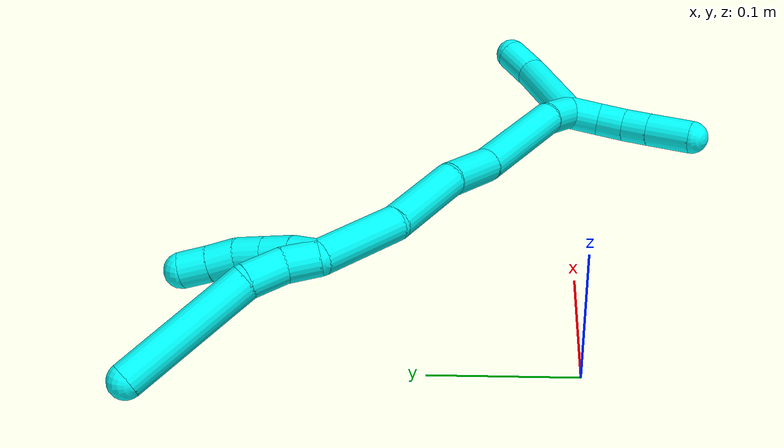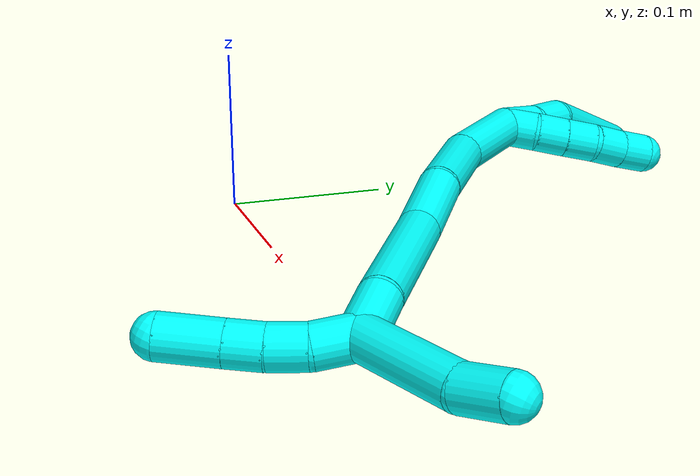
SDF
<sdf version="1.7">
 <world name="default">
  <model name="3">
   <static>0</static>
   <link name="3">
    <collision name="collision-cylinder-e_1_2_8">
     <pose>-0.006054 0.008515 -0.005609 -2.15326 -0.535807 0.94246</pose>
     <geometry><cylinder><radius>0.0125</radius><length>0.023717</length></cylinder></geometry>
     <surface>
      <friction><ode><mu>1.16</mu><mu2>1.16</mu2><slip1>0</slip1><slip2>0</slip2></ode></friction>
      <contact><ode><kp>1e+06</kp><kd>1</kd><max_vel>0</max_vel><min_depth>0.001</min_depth></ode></contact>
     </surface>
    </collision>
    <visual name="visual-cylinder-e_1_2_8">
     <pose>-0.006054 0.008515 -0.005609 -2.15326 -0.535807 0.94246</pose>
     <geometry><cylinder><radius>0.0125</radius><length>0.023717</length></cylinder></geometry>
     <material><ambient>0.003922 1 0.996078 1</ambient></material>
    </visual>
    <collision name="collision-cylinder-e_2_8_9">
     <pose>-0.021056 0.027623 -0.013735 -1.80409 -0.68794 0.851196</pose>
     <geometry><cylinder><radius>0.0125</radius><length>0.028185</length></cylinder></geometry>
     <surface>
      <friction><ode><mu>1.16</mu><mu2>1.16</mu2><slip1>0</slip1><slip2>0</slip2></ode></friction>
      <contact><ode><kp>1e+06</kp><kd>1</kd><max_vel>0</max_vel><min_depth>0.001</min_depth></ode></contact>
     </surface>
    </collision>
    <visual name="visual-cylinder-e_2_8_9">
     <pose>-0.021056 0.027623 -0.013735 -1.80409 -0.68794 0.851196</pose>
     <geometry><cylinder><radius>0.0125</radius><length>0.028185</length></cylinder></geometry>
     <material><ambient>0.003922 1 0.996078 1</ambient></material>
    </visual>
    <collision name="collision-cylinder-e_3_9_6">
     <pose>-0.071401 0.062933 -0.025261 -1.92029 -1.00466 1.33092</pose>
     <geometry><cylinder><radius>0.0125</radius><length>0.098098</length></cylinder></geometry>
     <surface>
      <friction><ode><mu>1.16</mu><mu2>1.16</mu2><slip1>0</slip1><slip2>0</slip2></ode></friction>
      <contact><ode><kp>1e+06</kp><kd>1</kd><max_vel>0</max_vel><min_depth>0.001</min_depth></ode></contact>
     </surface>
    </collision>
    <visual name="visual-cylinder-e_3_9_6">
     <pose>-0.071401 0.062933 -0.025261 -1.92029 -1.00466 1.33092</pose>
     <geometry><cylinder><radius>0.0125</radius><length>0.098098</length></cylinder></geometry>
     <material><ambient>0.003922 1 0.996078 1</ambient></material>
    </visual>
    <collision name="collision-cylinder-e_1_2_10">
     <pose>-0.001548 0.003504 -0.009237 -2.779 -0.155393 0.803243</pose>
     <geometry><cylinder><radius>0.0125</radius><length>0.02</length></cylinder></geometry>
     <surface>
      <friction><ode><mu>1.16</mu><mu2>1.16</mu2><slip1>0</slip1><slip2>0</slip2></ode></friction>
      <contact><ode><kp>1e+06</kp><kd>1</kd><max_vel>0</max_vel><min_depth>0.001</min_depth></ode></contact>
     </surface>
    </collision>
    <visual name="visual-cylinder-e_1_2_10">
     <pose>-0.001548 0.003504 -0.009237 -2.779 -0.155393 0.803243</pose>
     <geometry><cylinder><radius>0.0125</radius><length>0.02</length></cylinder></geometry>
     <material><ambient>0.003922 1 0.996078 1</ambient></material>
    </visual>
    <collision name="collision-cylinder-e_2_10_11">
     <pose>-0.006389 0.011238 -0.026916 -2.67711 -0.335669 1.24326</pose>
     <geometry><cylinder><radius>0.0125</radius><length>0.02</length></cylinder></geometry>
     <surface>
      <friction><ode><mu>1.16</mu><mu2>1.16</mu2><slip1>0</slip1><slip2>0</slip2></ode></friction>
      <contact><ode><kp>1e+06</kp><kd>1</kd><max_vel>0</max_vel><min_depth>0.001</min_depth></ode></contact>
     </surface>
    </collision>
    <visual name="visual-cylinder-e_2_10_11">
     <pose>-0.006389 0.011238 -0.026916 -2.67711 -0.335669 1.24326</pose>
     <geometry><cylinder><radius>0.0125</radius><length>0.02</length></cylinder></geometry>
     <material><ambient>0.003922 1 0.996078 1</ambient></material>
    </visual>
    <collision name="collision-cylinder-e_3_11_12">
     <pose>-0.013007 0.019838 -0.043715 -2.65977 -0.338838 1.21643</pose>
     <geometry><cylinder><radius>0.0125</radius><length>0.02</length></cylinder></geometry>
     <surface>
      <friction><ode><mu>1.16</mu><mu2>1.16</mu2><slip1>0</slip1><slip2>0</slip2></ode></friction>
      <contact><ode><kp>1e+06</kp><kd>1</kd><max_vel>0</max_vel><min_depth>0.001</min_depth></ode></contact>
     </surface>
    </collision>
    <visual name="visual-cylinder-e_3_11_12">
     <pose>-0.013007 0.019838 -0.043715 -2.65977 -0.338838 1.21643</pose>
     <geometry><cylinder><radius>0.0125</radius><length>0.02</length></cylinder></geometry>
     <material><ambient>0.003922 1 0.996078 1</ambient></material>
    </visual>
    <collision name="collision-cylinder-e_4_12_13">
     <pose>-0.021846 0.029123 -0.058814 -2.51167 -0.584111 1.49053</pose>
     <geometry><cylinder><radius>0.0125</radius><length>0.02</length></cylinder></geometry>
     <surface>
      <friction><ode><mu>1.16</mu><mu2>1.16</mu2><slip1>0</slip1><slip2>0</slip2></ode></friction>
      <contact><ode><kp>1e+06</kp><kd>1</kd><max_vel>0</max_vel><min_depth>0.001</min_depth></ode></contact>
     </surface>
    </collision>
    <visual name="visual-cylinder-e_4_12_13">
     <pose>-0.021846 0.029123 -0.058814 -2.51167 -0.584111 1.49053</pose>
     <geometry><cylinder><radius>0.0125</radius><length>0.02</length></cylinder></geometry>
     <material><ambient>0.003922 1 0.996078 1</ambient></material>
    </visual>
    <collision name="collision-cylinder-e_5_13_5">
     <pose>-0.032538 0.039227 -0.072356 -2.48976 -0.544257 1.3804</pose>
     <geometry><cylinder><radius>0.0125</radius><length>0.02</length></cylinder></geometry>
     <surface>
      <friction><ode><mu>1.16</mu><mu2>1.16</mu2><slip1>0</slip1><slip2>0</slip2></ode></friction>
      <contact><ode><kp>1e+06</kp><kd>1</kd><max_vel>0</max_vel><min_depth>0.001</min_depth></ode></contact>
     </surface>
    </collision>
    <visual name="visual-cylinder-e_5_13_5">
     <pose>-0.032538 0.039227 -0.072356 -2.48976 -0.544257 1.3804</pose>
     <geometry><cylinder><radius>0.0125</radius><length>0.02</length></cylinder></geometry>
     <material><ambient>0.003922 1 0.996078 1</ambient></material>
    </visual>
    <collision name="collision-cylinder-e_1_2_14">
     <pose>0.019386 -0.026049 0.000106 1.56673 0.639782 0.637356</pose>
     <geometry><cylinder><radius>0.0125</radius><length>0.064942</length></cylinder></geometry>
     <surface>
      <friction><ode><mu>1.16</mu><mu2>1.16</mu2><slip1>0</slip1><slip2>0</slip2></ode></friction>
      <contact><ode><kp>1e+06</kp><kd>1</kd><max_vel>0</max_vel><min_depth>0.001</min_depth></ode></contact>
     </surface>
    </collision>
    <visual name="visual-cylinder-e_1_2_14">
     <pose>0.019386 -0.026049 0.000106 1.56673 0.639782 0.637356</pose>
     <geometry><cylinder><radius>0.0125</radius><length>0.064942</length></cylinder></geometry>
     <material><ambient>0.003922 1 0.996078 1</ambient></material>
    </visual>
    <collision name="collision-cylinder-e_2_14_15">
     <pose>0.060298 -0.076342 -0.007696 1.88608 0.70107 0.933441</pose>
     <geometry><cylinder><radius>0.0125</radius><length>0.066745</length></cylinder></geometry>
     <surface>
      <friction><ode><mu>1.16</mu><mu2>1.16</mu2><slip1>0</slip1><slip2>0</slip2></ode></friction>
      <contact><ode><kp>1e+06</kp><kd>1</kd><max_vel>0</max_vel><min_depth>0.001</min_depth></ode></contact>
     </surface>
    </collision>
    <visual name="visual-cylinder-e_2_14_15">
     <pose>0.060298 -0.076342 -0.007696 1.88608 0.70107 0.933441</pose>
     <geometry><cylinder><radius>0.0125</radius><length>0.066745</length></cylinder></geometry>
     <material><ambient>0.003922 1 0.996078 1</ambient></material>
    </visual>
    <collision name="collision-cylinder-e_3_15_16">
     <pose>0.092519 -0.120765 -0.021726 1.86539 0.469388 0.62378</pose>
     <geometry><cylinder><radius>0.0125</radius><length>0.047288</length></cylinder></geometry>
     <surface>
      <friction><ode><mu>1.16</mu><mu2>1.16</mu2><slip1>0</slip1><slip2>0</slip2></ode></friction>
      <contact><ode><kp>1e+06</kp><kd>1</kd><max_vel>0</max_vel><min_depth>0.001</min_depth></ode></contact>
     </surface>
    </collision>
    <visual name="visual-cylinder-e_3_15_16">
     <pose>0.092519 -0.120765 -0.021726 1.86539 0.469388 0.62378</pose>
     <geometry><cylinder><radius>0.0125</radius><length>0.047288</length></cylinder></geometry>
     <material><ambient>0.003922 1 0.996078 1</ambient></material>
    </visual>
    <collision name="collision-cylinder-e_4_16_17">
     <pose>0.130512 -0.174436 -0.039527 1.90631 0.655907 0.893372</pose>
     <geometry><cylinder><radius>0.0125</radius><length>0.089517</length></cylinder></geometry>
     <surface>
      <friction><ode><mu>1.16</mu><mu2>1.16</mu2><slip1>0</slip1><slip2>0</slip2></ode></friction>
      <contact><ode><kp>1e+06</kp><kd>1</kd><max_vel>0</max_vel><min_depth>0.001</min_depth></ode></contact>
     </surface>
    </collision>
    <visual name="visual-cylinder-e_4_16_17">
     <pose>0.130512 -0.174436 -0.039527 1.90631 0.655907 0.893372</pose>
     <geometry><cylinder><radius>0.0125</radius><length>0.089517</length></cylinder></geometry>
     <material><ambient>0.003922 1 0.996078 1</ambient></material>
    </visual>
    <collision name="collision-cylinder-e_5_17_1">
     <pose>0.164438 -0.221711 -0.054991 1.83878 0.434277 0.563338</pose>
     <geometry><cylinder><radius>0.0125</radius><length>0.031509</length></cylinder></geometry>
     <surface>
      <friction><ode><mu>1.16</mu><mu2>1.16</mu2><slip1>0</slip1><slip2>0</slip2></ode></friction>
      <contact><ode><kp>1e+06</kp><kd>1</kd><max_vel>0</max_vel><min_depth>0.001</min_depth></ode></contact>
     </surface>
    </collision>
    <visual name="visual-cylinder-e_5_17_1">
     <pose>0.164438 -0.221711 -0.054991 1.83878 0.434277 0.563338</pose>
     <geometry><cylinder><radius>0.0125</radius><length>0.031509</length></cylinder></geometry>
     <material><ambient>0.003922 1 0.996078 1</ambient></material>
    </visual>
    <collision name="collision-cylinder-e_1_1_18">
     <pose>0.172211 -0.243927 -0.049924 0.761283 0.093362 0.037382</pose>
     <geometry><cylinder><radius>0.0125</radius><length>0.024559</length></cylinder></geometry>
     <surface>
      <friction><ode><mu>1.16</mu><mu2>1.16</mu2><slip1>0</slip1><slip2>0</slip2></ode></friction>
      <contact><ode><kp>1e+06</kp><kd>1</kd><max_vel>0</max_vel><min_depth>0.001</min_depth></ode></contact>
     </surface>
    </collision>
    <visual name="visual-cylinder-e_1_1_18">
     <pose>0.172211 -0.243927 -0.049924 0.761283 0.093362 0.037382</pose>
     <geometry><cylinder><radius>0.0125</radius><length>0.024559</length></cylinder></geometry>
     <material><ambient>0.003922 1 0.996078 1</ambient></material>
    </visual>
    <collision name="collision-cylinder-e_2_18_19">
     <pose>0.174086 -0.257762 -0.031887 0.531451 0.068431 0.018631</pose>
     <geometry><cylinder><radius>0.0125</radius><length>0.021363</length></cylinder></geometry>
     <surface>
      <friction><ode><mu>1.16</mu><mu2>1.16</mu2><slip1>0</slip1><slip2>0</slip2></ode></friction>
      <contact><ode><kp>1e+06</kp><kd>1</kd><max_vel>0</max_vel><min_depth>0.001</min_depth></ode></contact>
     </surface>
    </collision>
    <visual name="visual-cylinder-e_2_18_19">
     <pose>0.174086 -0.257762 -0.031887 0.531451 0.068431 0.018631</pose>
     <geometry><cylinder><radius>0.0125</radius><length>0.021363</length></cylinder></geometry>
     <material><ambient>0.003922 1 0.996078 1</ambient></material>
    </visual>
    <collision name="collision-cylinder-e_3_19_20">
     <pose>0.175671 -0.267317 -0.013635 0.42981 0.085485 0.01867</pose>
     <geometry><cylinder><radius>0.0125</radius><length>0.020016</length></cylinder></geometry>
     <surface>
      <friction><ode><mu>1.16</mu><mu2>1.16</mu2><slip1>0</slip1><slip2>0</slip2></ode></friction>
      <contact><ode><kp>1e+06</kp><kd>1</kd><max_vel>0</max_vel><min_depth>0.001</min_depth></ode></contact>
     </surface>
    </collision>
    <visual name="visual-cylinder-e_3_19_20">
     <pose>0.175671 -0.267317 -0.013635 0.42981 0.085485 0.01867</pose>
     <geometry><cylinder><radius>0.0125</radius><length>0.020016</length></cylinder></geometry>
     <material><ambient>0.003922 1 0.996078 1</ambient></material>
    </visual>
    <collision name="collision-cylinder-e_4_20_4">
     <pose>0.178082 -0.278399 0.01091 0.420728 0.091533 0.019558</pose>
     <geometry><cylinder><radius>0.0125</radius><length>0.034062</length></cylinder></geometry>
     <surface>
      <friction><ode><mu>1.16</mu><mu2>1.16</mu2><slip1>0</slip1><slip2>0</slip2></ode></friction>
      <contact><ode><kp>1e+06</kp><kd>1</kd><max_vel>0</max_vel><min_depth>0.001</min_depth></ode></contact>
     </surface>
    </collision>
    <visual name="visual-cylinder-e_4_20_4">
     <pose>0.178082 -0.278399 0.01091 0.420728 0.091533 0.019558</pose>
     <geometry><cylinder><radius>0.0125</radius><length>0.034062</length></cylinder></geometry>
     <material><ambient>0.003922 1 0.996078 1</ambient></material>
    </visual>
    <collision name="collision-cylinder-e_1_1_21">
     <pose>0.185109 -0.24061 -0.090898 2.98363 0.40754 2.41003</pose>
     <geometry><cylinder><radius>0.0125</radius><length>0.070858</length></cylinder></geometry>
     <surface>
      <friction><ode><mu>1.16</mu><mu2>1.16</mu2><slip1>0</slip1><slip2>0</slip2></ode></friction>
      <contact><ode><kp>1e+06</kp><kd>1</kd><max_vel>0</max_vel><min_depth>0.001</min_depth></ode></contact>
     </surface>
    </collision>
    <visual name="visual-cylinder-e_1_1_21">
     <pose>0.185109 -0.24061 -0.090898 2.98363 0.40754 2.41003</pose>
     <geometry><cylinder><radius>0.0125</radius><length>0.070858</length></cylinder></geometry>
     <material><ambient>0.003922 1 0.996078 1</ambient></material>
    </visual>
    <collision name="collision-cylinder-e_2_21_3">
     <pose>0.205036 -0.243914 -0.136226 -3.00523 0.415772 -2.5154</pose>
     <geometry><cylinder><radius>0.0125</radius><length>0.029142</length></cylinder></geometry>
     <surface>
      <friction><ode><mu>1.16</mu><mu2>1.16</mu2><slip1>0</slip1><slip2>0</slip2></ode></friction>
      <contact><ode><kp>1e+06</kp><kd>1</kd><max_vel>0</max_vel><min_depth>0.001</min_depth></ode></contact>
     </surface>
    </collision>
    <visual name="visual-cylinder-e_2_21_3">
     <pose>0.205036 -0.243914 -0.136226 -3.00523 0.415772 -2.5154</pose>
     <geometry><cylinder><radius>0.0125</radius><length>0.029142</length></cylinder></geometry>
     <material><ambient>0.003922 1 0.996078 1</ambient></material>
    </visual>
    <collision name="collision-sphere-3">
     <pose>0.210921 -0.242102 -0.149432 0 -0 0</pose>
     <geometry><sphere><radius>0.0125</radius></sphere></geometry>
     <surface>
      <friction><ode><mu>1.16</mu><mu2>1.16</mu2><slip1>0</slip1><slip2>0</slip2></ode></friction>
      <contact><ode><kp>1e+06</kp><kd>1</kd><max_vel>0</max_vel><min_depth>0.001</min_depth></ode></contact>
     </surface>
    </collision>
    <visual name="visual-sphere-3">
     <pose>0.210921 -0.242102 -0.149432 0 -0 0</pose>
     <geometry><sphere><radius>0.0125</radius></sphere></geometry>
     <material><ambient>0.003922 1 0.996078 1</ambient></material>
    </visual>
    <collision name="collision-sphere-21">
     <pose>0.199151 -0.245727 -0.12302 0 -0 0</pose>
     <geometry><sphere><radius>0.0125</radius></sphere></geometry>
     <surface>
      <friction><ode><mu>1.16</mu><mu2>1.16</mu2><slip1>0</slip1><slip2>0</slip2></ode></friction>
      <contact><ode><kp>1e+06</kp><kd>1</kd><max_vel>0</max_vel><min_depth>0.001</min_depth></ode></contact>
     </surface>
    </collision>
    <visual name="visual-sphere-21">
     <pose>0.199151 -0.245727 -0.12302 0 -0 0</pose>
     <geometry><sphere><radius>0.0125</radius></sphere></geometry>
     <material><ambient>0.003922 1 0.996078 1</ambient></material>
    </visual>
    <collision name="collision-sphere-4">
     <pose>0.179639 -0.285326 0.026391 0 -0 0</pose>
     <geometry><sphere><radius>0.0125</radius></sphere></geometry>
     <surface>
      <friction><ode><mu>1.16</mu><mu2>1.16</mu2><slip1>0</slip1><slip2>0</slip2></ode></friction>
      <contact><ode><kp>1e+06</kp><kd>1</kd><max_vel>0</max_vel><min_depth>0.001</min_depth></ode></contact>
     </surface>
    </collision>
    <visual name="visual-sphere-4">
     <pose>0.179639 -0.285326 0.026391 0 -0 0</pose>
     <geometry><sphere><radius>0.0125</radius></sphere></geometry>
     <material><ambient>0.003922 1 0.996078 1</ambient></material>
    </visual>
    <collision name="collision-sphere-20">
     <pose>0.176526 -0.271472 -0.004571 0 -0 0</pose>
     <geometry><sphere><radius>0.0125</radius></sphere></geometry>
     <surface>
      <friction><ode><mu>1.16</mu><mu2>1.16</mu2><slip1>0</slip1><slip2>0</slip2></ode></friction>
      <contact><ode><kp>1e+06</kp><kd>1</kd><max_vel>0</max_vel><min_depth>0.001</min_depth></ode></contact>
     </surface>
    </collision>
    <visual name="visual-sphere-20">
     <pose>0.176526 -0.271472 -0.004571 0 -0 0</pose>
     <geometry><sphere><radius>0.0125</radius></sphere></geometry>
     <material><ambient>0.003922 1 0.996078 1</ambient></material>
    </visual>
    <collision name="collision-sphere-11">
     <pose>-0.009683 0.015468 -0.035357 0 -0 0</pose>
     <geometry><sphere><radius>0.0125</radius></sphere></geometry>
     <surface>
      <friction><ode><mu>1.16</mu><mu2>1.16</mu2><slip1>0</slip1><slip2>0</slip2></ode></friction>
      <contact><ode><kp>1e+06</kp><kd>1</kd><max_vel>0</max_vel><min_depth>0.001</min_depth></ode></contact>
     </surface>
    </collision>
    <visual name="visual-sphere-11">
     <pose>-0.009683 0.015468 -0.035357 0 -0 0</pose>
     <geometry><sphere><radius>0.0125</radius></sphere></geometry>
     <material><ambient>0.003922 1 0.996078 1</ambient></material>
    </visual>
    <collision name="collision-sphere-10">
     <pose>-0.003095 0.007009 -0.018474 0 -0 0</pose>
     <geometry><sphere><radius>0.0125</radius></sphere></geometry>
     <surface>
      <friction><ode><mu>1.16</mu><mu2>1.16</mu2><slip1>0</slip1><slip2>0</slip2></ode></friction>
      <contact><ode><kp>1e+06</kp><kd>1</kd><max_vel>0</max_vel><min_depth>0.001</min_depth></ode></contact>
     </surface>
    </collision>
    <visual name="visual-sphere-10">
     <pose>-0.003095 0.007009 -0.018474 0 -0 0</pose>
     <geometry><sphere><radius>0.0125</radius></sphere></geometry>
     <material><ambient>0.003922 1 0.996078 1</ambient></material>
    </visual>
    <collision name="collision-sphere-6">
     <pose>-0.112797 0.087651 -0.034269 0 -0 0</pose>
     <geometry><sphere><radius>0.0125</radius></sphere></geometry>
     <surface>
      <friction><ode><mu>1.16</mu><mu2>1.16</mu2><slip1>0</slip1><slip2>0</slip2></ode></friction>
      <contact><ode><kp>1e+06</kp><kd>1</kd><max_vel>0</max_vel><min_depth>0.001</min_depth></ode></contact>
     </surface>
    </collision>
    <visual name="visual-sphere-6">
     <pose>-0.112797 0.087651 -0.034269 0 -0 0</pose>
     <geometry><sphere><radius>0.0125</radius></sphere></geometry>
     <material><ambient>0.003922 1 0.996078 1</ambient></material>
    </visual>
    <collision name="collision-sphere-9">
     <pose>-0.030005 0.038215 -0.016252 0 -0 0</pose>
     <geometry><sphere><radius>0.0125</radius></sphere></geometry>
     <surface>
      <friction><ode><mu>1.16</mu><mu2>1.16</mu2><slip1>0</slip1><slip2>0</slip2></ode></friction>
      <contact><ode><kp>1e+06</kp><kd>1</kd><max_vel>0</max_vel><min_depth>0.001</min_depth></ode></contact>
     </surface>
    </collision>
    <visual name="visual-sphere-9">
     <pose>-0.030005 0.038215 -0.016252 0 -0 0</pose>
     <geometry><sphere><radius>0.0125</radius></sphere></geometry>
     <material><ambient>0.003922 1 0.996078 1</ambient></material>
    </visual>
    <collision name="collision-sphere-2">
     <geometry><sphere><radius>0.0125</radius></sphere></geometry>
     <surface>
      <friction><ode><mu>1.16</mu><mu2>1.16</mu2><slip1>0</slip1><slip2>0</slip2></ode></friction>
      <contact><ode><kp>1e+06</kp><kd>1</kd><max_vel>0</max_vel><min_depth>0.001</min_depth></ode></contact>
     </surface>
    </collision>
    <visual name="visual-sphere-2">
     <geometry><sphere><radius>0.0125</radius></sphere></geometry>
     <material><ambient>0.003922 1 0.996078 1</ambient></material>
    </visual>
    <collision name="collision-sphere-19">
     <pose>0.174817 -0.263162 -0.0227 0 -0 0</pose>
     <geometry><sphere><radius>0.0125</radius></sphere></geometry>
     <surface>
      <friction><ode><mu>1.16</mu><mu2>1.16</mu2><slip1>0</slip1><slip2>0</slip2></ode></friction>
      <contact><ode><kp>1e+06</kp><kd>1</kd><max_vel>0</max_vel><min_depth>0.001</min_depth></ode></contact>
     </surface>
    </collision>
    <visual name="visual-sphere-19">
     <pose>0.174817 -0.263162 -0.0227 0 -0 0</pose>
     <geometry><sphere><radius>0.0125</radius></sphere></geometry>
     <material><ambient>0.003922 1 0.996078 1</ambient></material>
    </visual>
    <collision name="collision-sphere-8">
     <pose>-0.012108 0.017031 -0.011218 0 -0 0</pose>
     <geometry><sphere><radius>0.0125</radius></sphere></geometry>
     <surface>
      <friction><ode><mu>1.16</mu><mu2>1.16</mu2><slip1>0</slip1><slip2>0</slip2></ode></friction>
      <contact><ode><kp>1e+06</kp><kd>1</kd><max_vel>0</max_vel><min_depth>0.001</min_depth></ode></contact>
     </surface>
    </collision>
    <visual name="visual-sphere-8">
     <pose>-0.012108 0.017031 -0.011218 0 -0 0</pose>
     <geometry><sphere><radius>0.0125</radius></sphere></geometry>
     <material><ambient>0.003922 1 0.996078 1</ambient></material>
    </visual>
    <collision name="collision-sphere-12">
     <pose>-0.016331 0.024209 -0.052073 0 -0 0</pose>
     <geometry><sphere><radius>0.0125</radius></sphere></geometry>
     <surface>
      <friction><ode><mu>1.16</mu><mu2>1.16</mu2><slip1>0</slip1><slip2>0</slip2></ode></friction>
      <contact><ode><kp>1e+06</kp><kd>1</kd><max_vel>0</max_vel><min_depth>0.001</min_depth></ode></contact>
     </surface>
    </collision>
    <visual name="visual-sphere-12">
     <pose>-0.016331 0.024209 -0.052073 0 -0 0</pose>
     <geometry><sphere><radius>0.0125</radius></sphere></geometry>
     <material><ambient>0.003922 1 0.996078 1</ambient></material>
    </visual>
    <collision name="collision-sphere-13">
     <pose>-0.02736 0.034037 -0.065555 0 -0 0</pose>
     <geometry><sphere><radius>0.0125</radius></sphere></geometry>
     <surface>
      <friction><ode><mu>1.16</mu><mu2>1.16</mu2><slip1>0</slip1><slip2>0</slip2></ode></friction>
      <contact><ode><kp>1e+06</kp><kd>1</kd><max_vel>0</max_vel><min_depth>0.001</min_depth></ode></contact>
     </surface>
    </collision>
    <visual name="visual-sphere-13">
     <pose>-0.02736 0.034037 -0.065555 0 -0 0</pose>
     <geometry><sphere><radius>0.0125</radius></sphere></geometry>
     <material><ambient>0.003922 1 0.996078 1</ambient></material>
    </visual>
    <collision name="collision-sphere-5">
     <pose>-0.037716 0.044417 -0.079157 0 -0 0</pose>
     <geometry><sphere><radius>0.0125</radius></sphere></geometry>
     <surface>
      <friction><ode><mu>1.16</mu><mu2>1.16</mu2><slip1>0</slip1><slip2>0</slip2></ode></friction>
      <contact><ode><kp>1e+06</kp><kd>1</kd><max_vel>0</max_vel><min_depth>0.001</min_depth></ode></contact>
     </surface>
    </collision>
    <visual name="visual-sphere-5">
     <pose>-0.037716 0.044417 -0.079157 0 -0 0</pose>
     <geometry><sphere><radius>0.0125</radius></sphere></geometry>
     <material><ambient>0.003922 1 0.996078 1</ambient></material>
    </visual>
    <collision name="collision-sphere-14">
     <pose>0.038771 -0.052097 0.000212 0 -0 0</pose>
     <geometry><sphere><radius>0.0125</radius></sphere></geometry>
     <surface>
      <friction><ode><mu>1.16</mu><mu2>1.16</mu2><slip1>0</slip1><slip2>0</slip2></ode></friction>
      <contact><ode><kp>1e+06</kp><kd>1</kd><max_vel>0</max_vel><min_depth>0.001</min_depth></ode></contact>
     </surface>
    </collision>
    <visual name="visual-sphere-14">
     <pose>0.038771 -0.052097 0.000212 0 -0 0</pose>
     <geometry><sphere><radius>0.0125</radius></sphere></geometry>
     <material><ambient>0.003922 1 0.996078 1</ambient></material>
    </visual>
    <collision name="collision-sphere-15">
     <pose>0.081824 -0.100586 -0.015603 0 -0 0</pose>
     <geometry><sphere><radius>0.0125</radius></sphere></geometry>
     <surface>
      <friction><ode><mu>1.16</mu><mu2>1.16</mu2><slip1>0</slip1><slip2>0</slip2></ode></friction>
      <contact><ode><kp>1e+06</kp><kd>1</kd><max_vel>0</max_vel><min_depth>0.001</min_depth></ode></contact>
     </surface>
    </collision>
    <visual name="visual-sphere-15">
     <pose>0.081824 -0.100586 -0.015603 0 -0 0</pose>
     <geometry><sphere><radius>0.0125</radius></sphere></geometry>
     <material><ambient>0.003922 1 0.996078 1</ambient></material>
    </visual>
    <collision name="collision-sphere-16">
     <pose>0.103214 -0.140943 -0.027848 0 -0 0</pose>
     <geometry><sphere><radius>0.0125</radius></sphere></geometry>
     <surface>
      <friction><ode><mu>1.16</mu><mu2>1.16</mu2><slip1>0</slip1><slip2>0</slip2></ode></friction>
      <contact><ode><kp>1e+06</kp><kd>1</kd><max_vel>0</max_vel><min_depth>0.001</min_depth></ode></contact>
     </surface>
    </collision>
    <visual name="visual-sphere-16">
     <pose>0.103214 -0.140943 -0.027848 0 -0 0</pose>
     <geometry><sphere><radius>0.0125</radius></sphere></geometry>
     <material><ambient>0.003922 1 0.996078 1</ambient></material>
    </visual>
    <collision name="collision-sphere-17">
     <pose>0.157809 -0.20793 -0.051207 0 -0 0</pose>
     <geometry><sphere><radius>0.0125</radius></sphere></geometry>
     <surface>
      <friction><ode><mu>1.16</mu><mu2>1.16</mu2><slip1>0</slip1><slip2>0</slip2></ode></friction>
      <contact><ode><kp>1e+06</kp><kd>1</kd><max_vel>0</max_vel><min_depth>0.001</min_depth></ode></contact>
     </surface>
    </collision>
    <visual name="visual-sphere-17">
     <pose>0.157809 -0.20793 -0.051207 0 -0 0</pose>
     <geometry><sphere><radius>0.0125</radius></sphere></geometry>
     <material><ambient>0.003922 1 0.996078 1</ambient></material>
    </visual>
    <collision name="collision-sphere-1">
     <pose>0.171066 -0.235493 -0.058775 0 -0 0</pose>
     <geometry><sphere><radius>0.0125</radius></sphere></geometry>
     <surface>
      <friction><ode><mu>1.16</mu><mu2>1.16</mu2><slip1>0</slip1><slip2>0</slip2></ode></friction>
      <contact><ode><kp>1e+06</kp><kd>1</kd><max_vel>0</max_vel><min_depth>0.001</min_depth></ode></contact>
     </surface>
    </collision>
    <visual name="visual-sphere-1">
     <pose>0.171066 -0.235493 -0.058775 0 -0 0</pose>
     <geometry><sphere><radius>0.0125</radius></sphere></geometry>
     <material><ambient>0.003922 1 0.996078 1</ambient></material>
    </visual>
    <collision name="collision-sphere-18">
     <pose>0.173356 -0.252361 -0.041073 0 -0 0</pose>
     <geometry><sphere><radius>0.0125</radius></sphere></geometry>
     <surface>
      <friction><ode><mu>1.16</mu><mu2>1.16</mu2><slip1>0</slip1><slip2>0</slip2></ode></friction>
      <contact><ode><kp>1e+06</kp><kd>1</kd><max_vel>0</max_vel><min_depth>0.001</min_depth></ode></contact>
     </surface>
    </collision>
    <visual name="visual-sphere-18">
     <pose>0.173356 -0.252361 -0.041073 0 -0 0</pose>
     <geometry><sphere><radius>0.0125</radius></sphere></geometry>
     <material><ambient>0.003922 1 0.996078 1</ambient></material>
    </visual>
    <inertial>
     <pose>0.071863 -0.101832 -0.034991 0 -0 0</pose>
     <mass>0.75</mass>
     <inertia><ixx>0.000223</ixx><ixy>0</ixy><ixz>0</ixz><iyy>0.00026</iyy><iyz>0</iyz><izz>2.9e-05</izz></inertia>
    </inertial>
   </link>
   <pose>0.055624 0.171206 0.051172 1.12984 -0.823183 -0.472318</pose>
  </model>
 </world>
</sdf>
